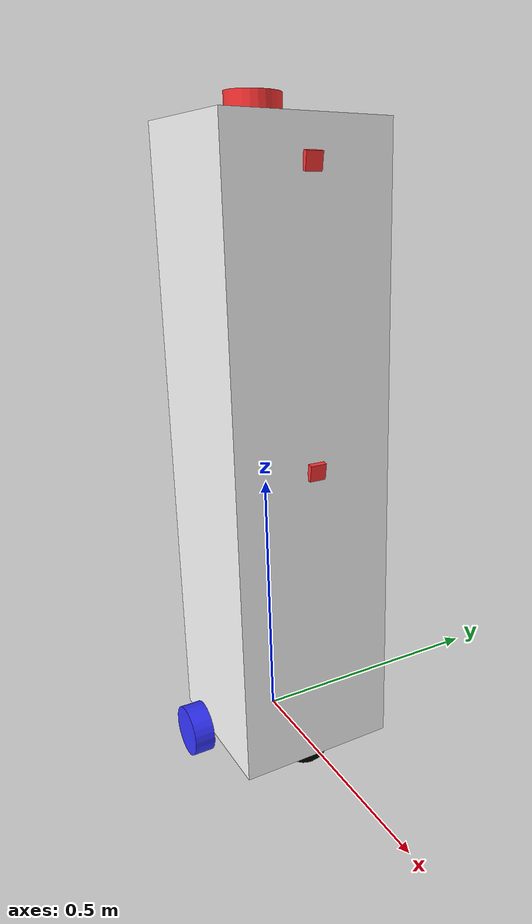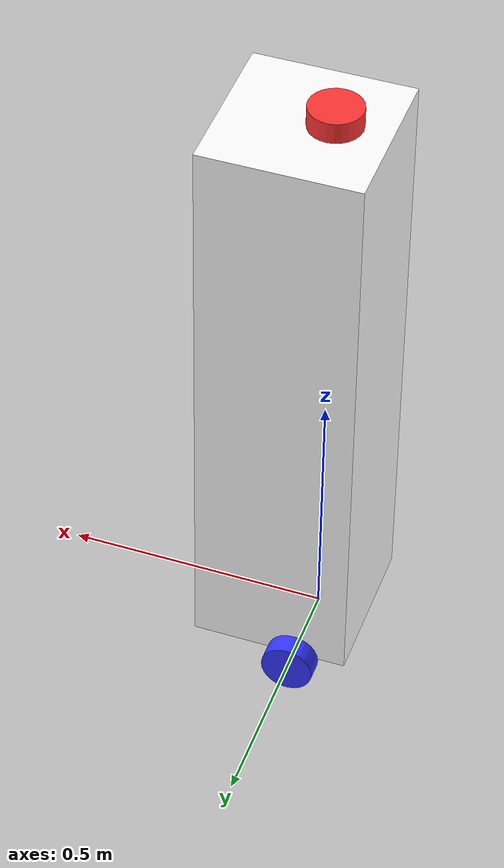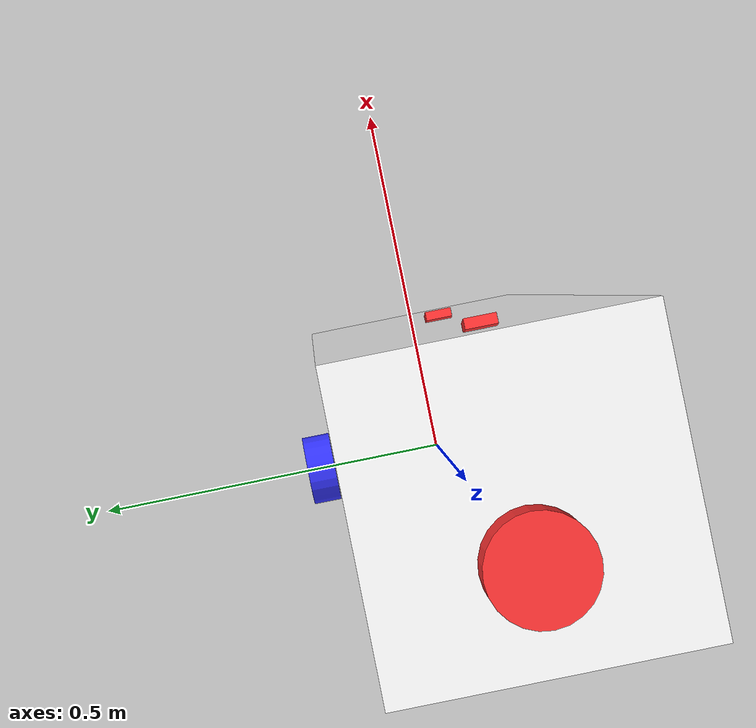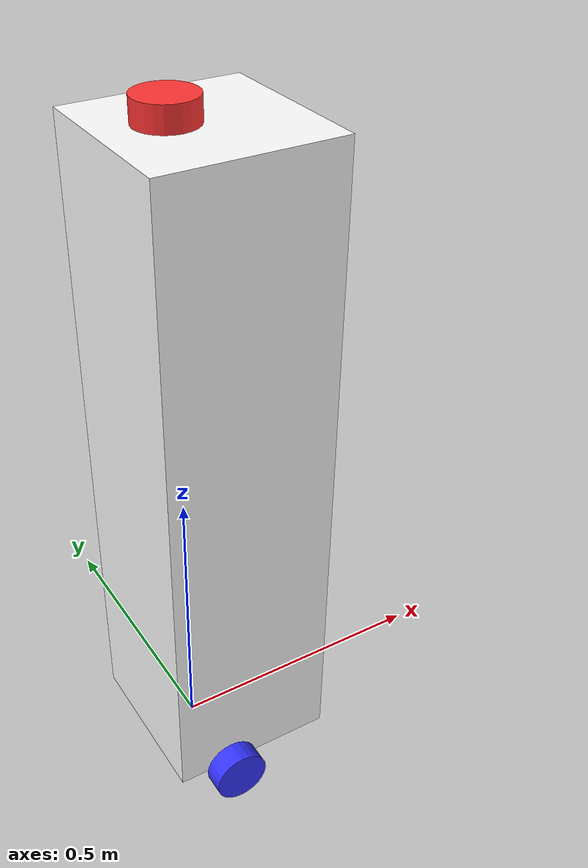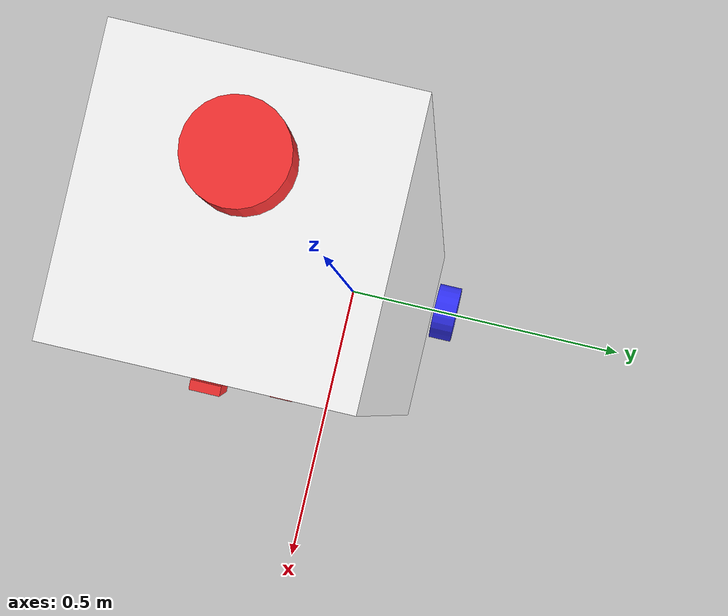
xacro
<?xml version="1.0"?>
<robot xmlns:xacro="http://www.ros.org/wiki/xacro"  name="robot">

    <xacro:include filename="robot_core.xacro" />
    <xacro:include filename="gazebo_control.xacro" />
    <xacro:include filename="lidar.xacro" />
    <xacro:include filename="camera.xacro" />

    <xacro:add_camera
        name="camera1"
        parent_link="chassis"
        xyz="0.305 0 1.08"
        rpy="0 0.174533 0"
        fov="1.089"
        width="640"
        height="480"
        frame_prefix="camera1"/>

    <xacro:add_camera
        name="camera2"
        parent_link="chassis"
        xyz="0.305 0 0.58"
        rpy="0 0.174533 0"
        fov="1.089"
        width="640"
        height="480"
        frame_prefix="camera2"/>

</robot>

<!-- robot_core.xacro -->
<robot xmlns:xacro="http://www.ros.org/wiki/xacro" >

    <xacro:include filename="inertial_macros.xacro"/>

    <material name="white">
        <color rgba="1 1 1 1"/>
    </material>

    <material name="orange">
        <color rgba="1 0.3 0.1 1"/>
    </material>

    <material name="blue">
        <color rgba="0.2 0.2 1 1"/>
    </material>

    <material name="red">
        <color rgba="1 0.2 0.2 1"/>
    </material>

    <material name="black">
        <color rgba="0 0 0 1"/>
    </material>

    <!-- BASE LINK -->
    <link name="base_link">
    </link>

    <!-- CHASSIS LINK -->
    <joint name="chassis_joint" type="fixed">
        <parent link="base_link"/>
        <child link="chassis"/>
        <origin xyz="-0.1 0 0"/>
    </joint>

    <link name="chassis">
        <visual>
            <origin xyz="0.15 0 0.575" rpy="0 0 0"/>
            <geometry>
                <box size="0.3 0.3 1.15"/>
            </geometry>
            <material name="white"/>
        </visual>
        <collision>
            <origin xyz="0.15 0 0.575" rpy="0 0 0"/>
            <geometry>
                <box size="0.3 0.3 1.15"/>
            </geometry>
        </collision>
        <xacro:inertial_box mass="0.5" x="0.3" y="0.3" z="1.15">
            <origin xyz="0.15 0 0.075" rpy="0 0 0"/>
        </xacro:inertial_box>
    </link>
    <gazebo reference="chassis">
        <material>Gazebo/White</material>
    </gazebo>

    <!-- LEFT WHEEL -->
    <joint name="left_wheel_joint" type="continuous">
        <parent link="base_link"/>
        <child link="left_wheel"/>
        <origin xyz="0 0.175 0" rpy="-${pi/2} 0 0"/>
        <axis xyz="0 0 1"/>
    </joint>

    <link name="left_wheel">
        <visual>
            <geometry>
                <cylinder length="0.04" radius="0.05" />
            </geometry>
            <material name="blue"/>
        </visual>
        <collision>
            <geometry>
                <cylinder radius="0.05" length="0.04"/>
            </geometry>
        </collision>
        <xacro:inertial_cylinder mass="0.1" length="0.04" radius="0.05">
            <origin xyz="0 0 0" rpy="0 0 0"/>
        </xacro:inertial_cylinder>
    </link>
    <gazebo reference="left_wheel">
        <material>Gazebo/Blue</material>
    </gazebo>

    <!-- RIGHT WHEEL -->
    <joint name="right_wheel_joint" type="continuous">
        <parent link="base_link"/>
        <child link="right_wheel"/>
        <origin xyz="0 -0.175 0" rpy="${pi/2} 0 0"/>
        <axis xyz="0 0 -1"/>
    </joint>

    <link name="right_wheel">
        <visual>
            <geometry>
                <cylinder length="0.04" radius="0.05" />
            </geometry>
            <material name="blue"/>
        </visual>
        <collision>
            <geometry>
                <cylinder radius="0.05" length="0.04"/>
            </geometry>
        </collision>
        <xacro:inertial_cylinder mass="0.1" length="0.04" radius="0.05">
            <origin xyz="0 0 0" rpy="0 0 0"/>
        </xacro:inertial_cylinder>
    </link>
    <gazebo reference="right_wheel">
        <material>Gazebo/Blue</material>
    </gazebo>

    <!-- CASTER WHEEL -->
    <joint name="caster_wheel_joint" type="fixed">
        <parent link="chassis"/>
        <child link="caster_wheel"/>
        <origin xyz="0.24 0 0" rpy="0 0 0"/>
    </joint>

    <link name="caster_wheel">
        <visual>
            <geometry>
                <sphere radius="0.05" />
            </geometry>
            <material name="black"/>
        </visual>
        <collision>
            <geometry>
                <sphere radius="0.05"/>
            </geometry>
        </collision>
        <xacro:inertial_sphere mass="0.1" radius="0.05">
            <origin xyz="0 0 0" rpy="0 0 0"/>
        </xacro:inertial_sphere>
    </link>
    <gazebo reference="caster_wheel">
        <material>Gazebo/Black</material>
        <mu1 value="0.001"/>
        <mu2 value="0.001"/>
    </gazebo>

</robot>

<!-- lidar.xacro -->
<robot xmlns:xacro="http://www.ros.org/wiki/xacro" >

    <joint name="laser_joint" type="fixed">
        <parent link="chassis"/>
        <child link="laser_frame"/>
        <origin xyz="0.1 0 1.175" rpy="0 0 0"/>
    </joint>

    <link name="laser_frame">
        <visual>
            <geometry>
                <cylinder radius="0.05" length="0.04"/>
            </geometry>
            <material name="red"/>
        </visual>
        <collision>
            <geometry>
                <cylinder radius="0.05" length="0.04"/>
            </geometry>
        </collision>
        <xacro:inertial_cylinder mass="0.1" length="0.04" radius="0.05">
            <origin xyz="0 0 0" rpy="0 0 0"/>
        </xacro:inertial_cylinder>
    </link>

    <gazebo reference="laser_frame">
        <material>Gazebo/Red</material>

        <sensor name="laser" type="ray">
            <pose> 0 0 0 0 0 0 </pose>
            <visualize>true</visualize>
            <update_rate>10</update_rate>
            <ray>
                <scan>
                <horizontal>
                    <samples>360</samples>
                    <resolution>1</resolution>
                    <min_angle>0.0</min_angle>
                    <max_angle>6.28319</max_angle>
                </horizontal>
                </scan>
                <range>
                    <min>0.120</min>
                    <max>3.5</max>
                    <resolution>0.015</resolution>
                </range>
                <noise>
                    <type>gaussian</type>
                    <mean>0.0</mean>
                    <stddev>0.01</stddev>
                </noise>
            </ray>
            <plugin name="laser_controller" filename="libgazebo_ros_laser.so">
                <topicName>scan</topicName>
                <frameName>laser_frame</frameName>
            </plugin>
        </sensor>
    </gazebo>
</robot>

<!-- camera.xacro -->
<robot xmlns:xacro="http://www.ros.org/wiki/xacro">
  <xacro:macro name="add_camera" params="name parent_link xyz rpy fov width height frame_prefix">

    <joint name="${name}_joint" type="fixed">
      <parent link="${parent_link}"/>
      <child link="${name}_link"/>
      <origin xyz="${xyz}" rpy="${rpy}"/>
    </joint>

    <link name="${name}_link">
      <visual>
        <geometry>
          <box size="0.010 0.03 0.03"/>
        </geometry>
        <material name="red"/>
      </visual>
    </link>

    <joint name="${name}_optical_joint" type="fixed">
      <parent link="${name}_link"/>
      <child link="${name}_link_optical"/>
      <origin xyz="0 0 0" rpy="${-pi/2} 0 ${-pi/2}"/>
    </joint>

    <link name="${name}_link_optical"/>

    <gazebo reference="${name}_link">
      <material>Gazebo/Red</material>

      <sensor name="${name}_sensor" type="camera">
        <pose>0 0 0 0 0 0</pose>
        <visualize>true</visualize>
        <update_rate>10</update_rate>
        <camera>
          <horizontal_fov>${fov}</horizontal_fov>
          <image>
            <format>R8G8B8</format>
            <width>${width}</width>
            <height>${height}</height>
          </image>
          <clip>
            <near>0.05</near>
            <far>8.0</far>
          </clip>
        </camera>

        <plugin name="${name}_controller" filename="libgazebo_ros_camera.so">
        <frame_name>${name}_link_optical</frame_name>
        <camera_name>${name}</camera_name>

        <imageTopicName>${name}/image_raw</imageTopicName>
        <cameraInfoTopicName>${name}/camera_info</cameraInfoTopicName>
        </plugin>
      </sensor>
    </gazebo>
  </xacro:macro>
</robot>
